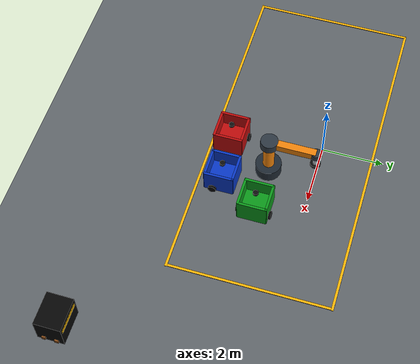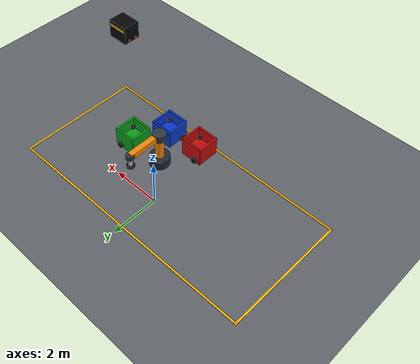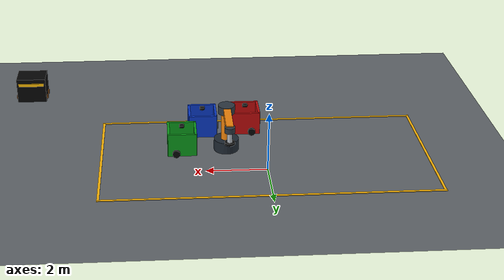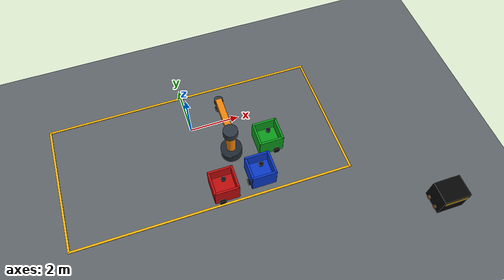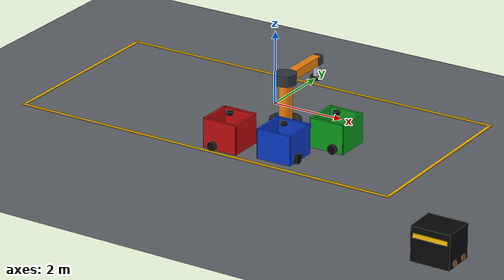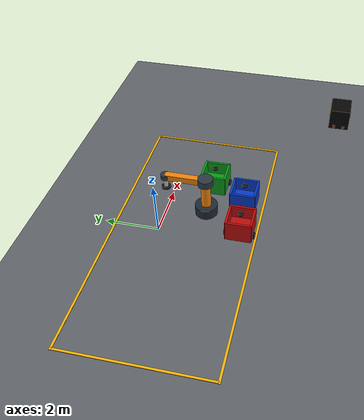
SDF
<sdf version="1.10">
 <world name="factory_test">
  <model name="ground_plane">
   <static>true</static>
   <link name="link">
    <collision name="collision">
     <geometry><plane><normal>0 0 1</normal><size>24 20</size></plane></geometry>
    </collision>
    <visual name="visual">
     <geometry><plane><normal>0 0 1</normal><size>24 20</size></plane></geometry>
     <material><ambient>0.28 0.3 0.32 1</ambient><diffuse>0.38 0.4 0.42 1</diffuse></material>
    </visual>
   </link>
  </model>
  <model name="sorting_arm">
   <pose>1.25 -1.5 0 0 0 0</pose>
   <link name="base_link">
    <inertial><mass>20</mass><inertia><ixx>1</ixx><iyy>1</iyy><izz>1</izz></inertia></inertial>
    <collision name="base_collision">
     <pose>0 0 0.2 0 0 0</pose>
     <geometry><cylinder><radius>0.42</radius><length>0.4</length></cylinder></geometry>
    </collision>
    <collision name="column_collision">
     <pose>0 0 0.9 0 0 0</pose>
     <geometry><cylinder><radius>0.18</radius><length>1.4</length></cylinder></geometry>
    </collision>
    <visual name="base">
     <pose>0 0 0.2 0 0 0</pose>
     <geometry><cylinder><radius>0.42</radius><length>0.4</length></cylinder></geometry>
     <material><diffuse>0.12 0.16 0.2 1</diffuse></material>
    </visual>
    <visual name="column">
     <pose>0 0 0.9 0 0 0</pose>
     <geometry><cylinder><radius>0.18</radius><length>1.4</length></cylinder></geometry>
     <material><diffuse>0.95 0.52 0.04 1</diffuse></material>
    </visual>
   </link>
   <joint name="yaw_joint" type="revolute">
    <pose relative_to="base_link">0 0 1.5 0 0 0</pose>
    <parent>base_link</parent>
    <child>boom_link</child>
    <axis>
     <xyz>0 0 1</xyz>
     <limit><lower>-3.0</lower><upper>3.0</upper><effort>250</effort><velocity>1.2</velocity></limit>
     <dynamics><damping>2.0</damping></dynamics>
    </axis>
   </joint>
   <link name="boom_link">
    <pose relative_to="yaw_joint">0 0 0 0 0 0</pose>
    <inertial>
     <pose>0 0.75 0 0 0 0</pose>
     <mass>5</mass>
     <inertia><ixx>1</ixx><iyy>0.2</iyy><izz>1</izz></inertia>
    </inertial>
    <collision name="boom_collision">
     <pose>0 0.75 0 0 0 0</pose>
     <geometry><box><size>0.24 1.5 0.24</size></box></geometry>
    </collision>
    <visual name="boom">
     <pose>0 0.75 0 0 0 0</pose>
     <geometry><box><size>0.24 1.5 0.24</size></box></geometry>
     <material><diffuse>0.95 0.52 0.04 1</diffuse></material>
    </visual>
    <visual name="shoulder">
     <geometry><cylinder><radius>0.28</radius><length>0.28</length></cylinder></geometry>
     <material><diffuse>0.18 0.22 0.26 1</diffuse></material>
    </visual>
   </link>
   <joint name="lift_joint" type="prismatic">
    <pose relative_to="boom_link">0 1.5 0 0 0 0</pose>
    <parent>boom_link</parent>
    <child>carriage_link</child>
    <axis>
     <xyz>0 0 1</xyz>
     <limit><lower>0</lower><upper>0.6</upper><effort>250</effort><velocity>0.8</velocity></limit>
     <dynamics><damping>3.0</damping></dynamics>
    </axis>
   </joint>
   <link name="carriage_link">
    <pose relative_to="lift_joint">0 0 0 0 0 0</pose>
    <inertial>
     <pose>0 0 -0.22 0 0 0</pose>
     <mass>2</mass>
     <inertia><ixx>0.08</ixx><iyy>0.08</iyy><izz>0.02</izz></inertia>
    </inertial>
    <collision name="tool_collision">
     <pose>0 0 -0.22 0 0 0</pose>
     <geometry><cylinder><radius>0.08</radius><length>0.45</length></cylinder></geometry>
    </collision>
    <visual name="wrist">
     <geometry><cylinder><radius>0.17</radius><length>0.18</length></cylinder></geometry>
     <material><diffuse>0.18 0.22 0.26 1</diffuse></material>
    </visual>
    <visual name="tool">
     <pose>0 0 -0.22 0 0 0</pose>
     <geometry><cylinder><radius>0.08</radius><length>0.45</length></cylinder></geometry>
     <material><diffuse>0.72 0.75 0.78 1</diffuse></material>
    </visual>
    <visual name="suction_cup">
     <pose>0 0 -0.48 0 0 0</pose>
     <geometry><cylinder><radius>0.17</radius><length>0.08</length></cylinder></geometry>
     <material><diffuse>0.04 0.04 0.04 1</diffuse></material>
    </visual>
   </link>
   <joint name="world_fixed" type="fixed"><parent>world</parent><child>base_link</child></joint>
   <plugin filename="gz-sim-joint-position-controller-system" name="gz::sim::systems::JointPositionController">
    <joint_name>yaw_joint</joint_name>
    <topic>/arm/yaw_cmd</topic>
    <p_gain>80</p_gain>
    <i_gain>0.5</i_gain>
    <d_gain>8</d_gain>
    <cmd_min>-250</cmd_min>
    <cmd_max>250</cmd_max>
   </plugin>
   <plugin filename="gz-sim-joint-position-controller-system" name="gz::sim::systems::JointPositionController">
    <joint_name>lift_joint</joint_name>
    <topic>/arm/lift_cmd</topic>
    <p_gain>1000</p_gain>
    <i_gain>10</i_gain>
    <d_gain>50</d_gain>
    <cmd_min>-250</cmd_min>
    <cmd_max>250</cmd_max>
   </plugin>
   <plugin filename="gz-sim-joint-state-publisher-system" name="gz::sim::systems::JointStatePublisher"/>
   <plugin filename="gz-sim-detachable-joint-system" name="gz::sim::systems::DetachableJoint">
    <parent_link>carriage_link</parent_link>
    <child_model>item_a_red_cube</child_model>
    <child_link>item</child_link>
    <detach_topic>/arm/a_red_cube/detach</detach_topic>
    <attach_topic>/arm/a_red_cube/attach</attach_topic>
    <output_topic>/arm/a_red_cube/attached</output_topic>
   </plugin>
   <plugin filename="gz-sim-detachable-joint-system" name="gz::sim::systems::DetachableJoint">
    <parent_link>carriage_link</parent_link>
    <child_model>item_b_green_cylinder</child_model>
    <child_link>item</child_link>
    <detach_topic>/arm/b_green_cylinder/detach</detach_topic>
    <attach_topic>/arm/b_green_cylinder/attach</attach_topic>
    <output_topic>/arm/b_green_cylinder/attached</output_topic>
   </plugin>
   <plugin filename="gz-sim-detachable-joint-system" name="gz::sim::systems::DetachableJoint">
    <parent_link>carriage_link</parent_link>
    <child_model>item_c_blue_hex</child_model>
    <child_link>item</child_link>
    <detach_topic>/arm/c_blue_hex/detach</detach_topic>
    <attach_topic>/arm/c_blue_hex/attach</attach_topic>
    <output_topic>/arm/c_blue_hex/attached</output_topic>
   </plugin>
  </model>
  <model name="pickup_sensor">
   <static>true</static>
   <pose>1.25 0 2.15 0 0 0</pose>
   <link name="pickup_sensor_link">
    <sensor name="pickup_logical_camera" type="logical_camera">
     <pose>0 0 0 0 1.5708 0</pose>
     <update_rate>30</update_rate>
     <logical_camera>
      <near>0.3</near>
      <far>1.6</far>
      <horizontal_fov>0.8</horizontal_fov>
      <aspect_ratio>1.5</aspect_ratio>
     </logical_camera>
     <always_on>true</always_on>
     <visualize>false</visualize>
     <topic>/pickup/logical_camera</topic>
    </sensor>
   </link>
  </model>
  <model name="bin_a_red">
   <pose>0.5 -2.95 0 0 0 3.14159</pose>
   <link name="bin">
    <inertial><mass>18</mass><inertia><ixx>1.5</ixx><iyy>1.5</iyy><izz>1.5</izz></inertia></inertial>
    <collision name="base_collision">
     <pose>0 0 0.23 0 0 0</pose>
     <geometry><box><size>0.95 0.95 0.16</size></box></geometry>
    </collision>
    <collision name="wall_1_collision">
     <pose>0 0.45 0.42 0 0 0</pose>
     <geometry><box><size>0.95 0.08 0.8</size></box></geometry>
    </collision>
    <collision name="wall_2_collision">
     <pose>0 -0.45 0.42 0 0 0</pose>
     <geometry><box><size>0.95 0.08 0.8</size></box></geometry>
    </collision>
    <collision name="wall_3_collision">
     <pose>0.45 0 0.42 0 0 0</pose>
     <geometry><box><size>0.08 0.95 0.8</size></box></geometry>
    </collision>
    <collision name="wall_4_collision">
     <pose>-0.45 0 0.42 0 0 0</pose>
     <geometry><box><size>0.08 0.95 0.8</size></box></geometry>
    </collision>
    <visual name="base">
     <pose>0 0 0.23 0 0 0</pose>
     <geometry><box><size>0.95 0.95 0.16</size></box></geometry>
     <material><diffuse>0.75 0.04 0.04 1</diffuse></material>
    </visual>
    <visual name="wall_1">
     <pose>0 0.45 0.42 0 0 0</pose>
     <geometry><box><size>0.95 0.08 0.8</size></box></geometry>
     <material><diffuse>0.75 0.04 0.04 1</diffuse></material>
    </visual>
    <visual name="wall_2">
     <pose>0 -0.45 0.42 0 0 0</pose>
     <geometry><box><size>0.95 0.08 0.8</size></box></geometry>
     <material><diffuse>0.75 0.04 0.04 1</diffuse></material>
    </visual>
    <visual name="wall_3">
     <pose>0.45 0 0.42 0 0 0</pose>
     <geometry><box><size>0.08 0.95 0.8</size></box></geometry>
     <material><diffuse>0.75 0.04 0.04 1</diffuse></material>
    </visual>
    <visual name="wall_4">
     <pose>-0.45 0 0.42 0 0 0</pose>
     <geometry><box><size>0.08 0.95 0.8</size></box></geometry>
     <material><diffuse>0.75 0.04 0.04 1</diffuse></material>
    </visual>
    <visual name="lidar_visual">
     <pose>0 0 0.9 0 0 0</pose>
     <geometry><cylinder><radius>0.09</radius><length>0.08</length></cylinder></geometry>
     <material><diffuse>0.05 0.05 0.05 1</diffuse></material>
    </visual>
    <sensor name="lidar" type="gpu_lidar">
     <pose>0 0 0.9 0 0 0</pose>
     <topic>/model/bin_a_red/scan</topic>
     <update_rate>10</update_rate>
     <lidar>
      <scan>
       <horizontal>
        <samples>360</samples>
        <resolution>1</resolution>
        <min_angle>-3.14159</min_angle>
        <max_angle>3.14159</max_angle>
       </horizontal>
      </scan>
      <range><min>0.15</min><max>12.0</max><resolution>0.03</resolution></range>
      <noise><type>gaussian</type><mean>0</mean><stddev>0.01</stddev></noise>
     </lidar>
     <always_on>true</always_on>
     <visualize>false</visualize>
    </sensor>
   </link>
   <link name="left_wheel">
    <pose>0.2 0.52 0.13 1.5708 0 0</pose>
    <inertial><mass>1</mass><inertia><ixx>0.02</ixx><iyy>0.02</iyy><izz>0.02</izz></inertia></inertial>
    <collision name="collision">
     <geometry><cylinder><radius>0.13</radius><length>0.1</length></cylinder></geometry>
    </collision>
    <visual name="visual">
     <geometry><cylinder><radius>0.13</radius><length>0.1</length></cylinder></geometry>
     <material><diffuse>0.02 0.02 0.02 1</diffuse></material>
    </visual>
   </link>
   <link name="right_wheel">
    <pose>0.2 -0.52 0.13 1.5708 0 0</pose>
    <inertial><mass>1</mass><inertia><ixx>0.02</ixx><iyy>0.02</iyy><izz>0.02</izz></inertia></inertial>
    <collision name="collision">
     <geometry><cylinder><radius>0.13</radius><length>0.1</length></cylinder></geometry>
    </collision>
    <visual name="visual">
     <geometry><cylinder><radius>0.13</radius><length>0.1</length></cylinder></geometry>
     <material><diffuse>0.02 0.02 0.02 1</diffuse></material>
    </visual>
   </link>
   <link name="caster">
    <pose>-0.35 0 0.09 0 0 0</pose>
    <inertial><mass>0.5</mass><inertia><ixx>0.01</ixx><iyy>0.01</iyy><izz>0.01</izz></inertia></inertial>
    <collision name="collision"><geometry><sphere><radius>0.09</radius></sphere></geometry></collision>
    <visual name="visual">
     <geometry><sphere><radius>0.09</radius></sphere></geometry>
     <material><diffuse>0.05 0.05 0.05 1</diffuse></material>
    </visual>
   </link>
   <joint name="left_wheel_joint" type="revolute">
    <parent>bin</parent>
    <child>left_wheel</child>
    <axis><xyz expressed_in="__model__">0 1 0</xyz></axis>
   </joint>
   <joint name="right_wheel_joint" type="revolute">
    <parent>bin</parent>
    <child>right_wheel</child>
    <axis><xyz expressed_in="__model__">0 1 0</xyz></axis>
   </joint>
   <joint name="caster_joint" type="ball"><parent>bin</parent><child>caster</child></joint>
   <plugin filename="gz-sim-diff-drive-system" name="gz::sim::systems::DiffDrive">
    <left_joint>left_wheel_joint</left_joint>
    <right_joint>right_wheel_joint</right_joint>
    <wheel_separation>1.04</wheel_separation>
    <wheel_radius>0.13</wheel_radius>
    <odom_publish_frequency>30</odom_publish_frequency>
    <max_linear_acceleration>0.3</max_linear_acceleration>
    <min_linear_acceleration>-0.3</min_linear_acceleration>
    <max_linear_velocity>0.4</max_linear_velocity>
    <min_linear_velocity>-0.4</min_linear_velocity>
   </plugin>
   <plugin filename="gz-sim-odometry-publisher-system" name="gz::sim::systems::OdometryPublisher">
    <odom_topic>/model/bin_a_red/ground_truth_odometry</odom_topic>
    <odom_publish_frequency>30</odom_publish_frequency>
    <odom_frame>map</odom_frame>
    <robot_base_frame>base_link</robot_base_frame>
    <dimensions>2</dimensions>
   </plugin>
   <plugin filename="gz-sim-detachable-joint-system" name="gz::sim::systems::DetachableJoint">
    <parent_link>bin</parent_link>
    <child_model>item_a_red_cube</child_model>
    <child_link>item</child_link>
    <detach_topic>/bin/a_red_cube/detach</detach_topic>
    <attach_topic>/bin/a_red_cube/attach</attach_topic>
    <output_topic>/bin/a_red_cube/attached</output_topic>
   </plugin>
  </model>
  <model name="bin_b_green">
   <pose>2.75 -1.5 0 0 0 0</pose>
   <link name="bin">
    <inertial><mass>18</mass><inertia><ixx>1.5</ixx><iyy>1.5</iyy><izz>1.5</izz></inertia></inertial>
    <collision name="base_collision">
     <pose>0 0 0.23 0 0 0</pose>
     <geometry><box><size>0.95 0.95 0.16</size></box></geometry>
    </collision>
    <collision name="wall_1_collision">
     <pose>0 0.45 0.42 0 0 0</pose>
     <geometry><box><size>0.95 0.08 0.8</size></box></geometry>
    </collision>
    <collision name="wall_2_collision">
     <pose>0 -0.45 0.42 0 0 0</pose>
     <geometry><box><size>0.95 0.08 0.8</size></box></geometry>
    </collision>
    <collision name="wall_3_collision">
     <pose>0.45 0 0.42 0 0 0</pose>
     <geometry><box><size>0.08 0.95 0.8</size></box></geometry>
    </collision>
    <collision name="wall_4_collision">
     <pose>-0.45 0 0.42 0 0 0</pose>
     <geometry><box><size>0.08 0.95 0.8</size></box></geometry>
    </collision>
    <visual name="base">
     <pose>0 0 0.23 0 0 0</pose>
     <geometry><box><size>0.95 0.95 0.16</size></box></geometry>
     <material><diffuse>0.04 0.6 0.1 1</diffuse></material>
    </visual>
    <visual name="wall_1">
     <pose>0 0.45 0.42 0 0 0</pose>
     <geometry><box><size>0.95 0.08 0.8</size></box></geometry>
     <material><diffuse>0.04 0.6 0.1 1</diffuse></material>
    </visual>
    <visual name="wall_2">
     <pose>0 -0.45 0.42 0 0 0</pose>
     <geometry><box><size>0.95 0.08 0.8</size></box></geometry>
     <material><diffuse>0.04 0.6 0.1 1</diffuse></material>
    </visual>
    <visual name="wall_3">
     <pose>0.45 0 0.42 0 0 0</pose>
     <geometry><box><size>0.08 0.95 0.8</size></box></geometry>
     <material><diffuse>0.04 0.6 0.1 1</diffuse></material>
    </visual>
    <visual name="wall_4">
     <pose>-0.45 0 0.42 0 0 0</pose>
     <geometry><box><size>0.08 0.95 0.8</size></box></geometry>
     <material><diffuse>0.04 0.6 0.1 1</diffuse></material>
    </visual>
    <visual name="lidar_visual">
     <pose>0 0 0.9 0 0 0</pose>
     <geometry><cylinder><radius>0.09</radius><length>0.08</length></cylinder></geometry>
     <material><diffuse>0.05 0.05 0.05 1</diffuse></material>
    </visual>
    <sensor name="lidar" type="gpu_lidar">
     <pose>0 0 0.9 0 0 0</pose>
     <topic>/model/bin_b_green/scan</topic>
     <update_rate>10</update_rate>
     <lidar>
      <scan>
       <horizontal>
        <samples>360</samples>
        <resolution>1</resolution>
        <min_angle>-3.14159</min_angle>
        <max_angle>3.14159</max_angle>
       </horizontal>
      </scan>
      <range><min>0.15</min><max>12.0</max><resolution>0.03</resolution></range>
      <noise><type>gaussian</type><mean>0</mean><stddev>0.01</stddev></noise>
     </lidar>
     <always_on>true</always_on>
     <visualize>false</visualize>
    </sensor>
   </link>
   <link name="left_wheel">
    <pose>0.2 0.52 0.13 1.5708 0 0</pose>
    <inertial><mass>1</mass><inertia><ixx>0.02</ixx><iyy>0.02</iyy><izz>0.02</izz></inertia></inertial>
    <collision name="collision">
     <geometry><cylinder><radius>0.13</radius><length>0.1</length></cylinder></geometry>
    </collision>
    <visual name="visual">
     <geometry><cylinder><radius>0.13</radius><length>0.1</length></cylinder></geometry>
     <material><diffuse>0.02 0.02 0.02 1</diffuse></material>
    </visual>
   </link>
   <link name="right_wheel">
    <pose>0.2 -0.52 0.13 1.5708 0 0</pose>
    <inertial><mass>1</mass><inertia><ixx>0.02</ixx><iyy>0.02</iyy><izz>0.02</izz></inertia></inertial>
    <collision name="collision">
     <geometry><cylinder><radius>0.13</radius><length>0.1</length></cylinder></geometry>
    </collision>
    <visual name="visual">
     <geometry><cylinder><radius>0.13</radius><length>0.1</length></cylinder></geometry>
     <material><diffuse>0.02 0.02 0.02 1</diffuse></material>
    </visual>
   </link>
   <link name="caster">
    <pose>-0.35 0 0.09 0 0 0</pose>
    <inertial><mass>0.5</mass><inertia><ixx>0.01</ixx><iyy>0.01</iyy><izz>0.01</izz></inertia></inertial>
    <collision name="collision"><geometry><sphere><radius>0.09</radius></sphere></geometry></collision>
    <visual name="visual">
     <geometry><sphere><radius>0.09</radius></sphere></geometry>
     <material><diffuse>0.05 0.05 0.05 1</diffuse></material>
    </visual>
   </link>
   <joint name="left_wheel_joint" type="revolute">
    <parent>bin</parent>
    <child>left_wheel</child>
    <axis><xyz expressed_in="__model__">0 1 0</xyz></axis>
   </joint>
   <joint name="right_wheel_joint" type="revolute">
    <parent>bin</parent>
    <child>right_wheel</child>
    <axis><xyz expressed_in="__model__">0 1 0</xyz></axis>
   </joint>
   <joint name="caster_joint" type="ball"><parent>bin</parent><child>caster</child></joint>
   <plugin filename="gz-sim-diff-drive-system" name="gz::sim::systems::DiffDrive">
    <left_joint>left_wheel_joint</left_joint>
    <right_joint>right_wheel_joint</right_joint>
    <wheel_separation>1.04</wheel_separation>
    <wheel_radius>0.13</wheel_radius>
    <odom_publish_frequency>30</odom_publish_frequency>
    <max_linear_acceleration>0.3</max_linear_acceleration>
    <min_linear_acceleration>-0.3</min_linear_acceleration>
    <max_linear_velocity>0.4</max_linear_velocity>
    <min_linear_velocity>-0.4</min_linear_velocity>
   </plugin>
   <plugin filename="gz-sim-odometry-publisher-system" name="gz::sim::systems::OdometryPublisher">
    <odom_topic>/model/bin_b_green/ground_truth_odometry</odom_topic>
    <odom_publish_frequency>30</odom_publish_frequency>
    <odom_frame>map</odom_frame>
    <robot_base_frame>base_link</robot_base_frame>
    <dimensions>2</dimensions>
   </plugin>
   <plugin filename="gz-sim-detachable-joint-system" name="gz::sim::systems::DetachableJoint">
    <parent_link>bin</parent_link>
    <child_model>item_b_green_cylinder</child_model>
    <child_link>item</child_link>
    <detach_topic>/bin/b_green_cylinder/detach</detach_topic>
    <attach_topic>/bin/b_green_cylinder/attach</attach_topic>
    <output_topic>/bin/b_green_cylinder/attached</output_topic>
   </plugin>
  </model>
  <model name="bin_c_blue">
   <pose>2.0 -2.8 0 0 0 -1.5708</pose>
   <link name="bin">
    <inertial><mass>18</mass><inertia><ixx>1.5</ixx><iyy>1.5</iyy><izz>1.5</izz></inertia></inertial>
    <collision name="base_collision">
     <pose>0 0 0.23 0 0 0</pose>
     <geometry><box><size>0.95 0.95 0.16</size></box></geometry>
    </collision>
    <collision name="wall_1_collision">
     <pose>0 0.45 0.42 0 0 0</pose>
     <geometry><box><size>0.95 0.08 0.8</size></box></geometry>
    </collision>
    <collision name="wall_2_collision">
     <pose>0 -0.45 0.42 0 0 0</pose>
     <geometry><box><size>0.95 0.08 0.8</size></box></geometry>
    </collision>
    <collision name="wall_3_collision">
     <pose>0.45 0 0.42 0 0 0</pose>
     <geometry><box><size>0.08 0.95 0.8</size></box></geometry>
    </collision>
    <collision name="wall_4_collision">
     <pose>-0.45 0 0.42 0 0 0</pose>
     <geometry><box><size>0.08 0.95 0.8</size></box></geometry>
    </collision>
    <visual name="base">
     <pose>0 0 0.23 0 0 0</pose>
     <geometry><box><size>0.95 0.95 0.16</size></box></geometry>
     <material><diffuse>0.03 0.22 0.78 1</diffuse></material>
    </visual>
    <visual name="wall_1">
     <pose>0 0.45 0.42 0 0 0</pose>
     <geometry><box><size>0.95 0.08 0.8</size></box></geometry>
     <material><diffuse>0.03 0.22 0.78 1</diffuse></material>
    </visual>
    <visual name="wall_2">
     <pose>0 -0.45 0.42 0 0 0</pose>
     <geometry><box><size>0.95 0.08 0.8</size></box></geometry>
     <material><diffuse>0.03 0.22 0.78 1</diffuse></material>
    </visual>
    <visual name="wall_3">
     <pose>0.45 0 0.42 0 0 0</pose>
     <geometry><box><size>0.08 0.95 0.8</size></box></geometry>
     <material><diffuse>0.03 0.22 0.78 1</diffuse></material>
    </visual>
    <visual name="wall_4">
     <pose>-0.45 0 0.42 0 0 0</pose>
     <geometry><box><size>0.08 0.95 0.8</size></box></geometry>
     <material><diffuse>0.03 0.22 0.78 1</diffuse></material>
    </visual>
    <visual name="lidar_visual">
     <pose>0 0 0.9 0 0 0</pose>
     <geometry><cylinder><radius>0.09</radius><length>0.08</length></cylinder></geometry>
     <material><diffuse>0.05 0.05 0.05 1</diffuse></material>
    </visual>
    <sensor name="lidar" type="gpu_lidar">
     <pose>0 0 0.9 0 0 0</pose>
     <topic>/model/bin_c_blue/scan</topic>
     <update_rate>10</update_rate>
     <lidar>
      <scan>
       <horizontal>
        <samples>360</samples>
        <resolution>1</resolution>
        <min_angle>-3.14159</min_angle>
        <max_angle>3.14159</max_angle>
       </horizontal>
      </scan>
      <range><min>0.15</min><max>12.0</max><resolution>0.03</resolution></range>
      <noise><type>gaussian</type><mean>0</mean><stddev>0.01</stddev></noise>
     </lidar>
     <always_on>true</always_on>
     <visualize>false</visualize>
    </sensor>
   </link>
   <link name="left_wheel">
    <pose>0.2 0.52 0.13 1.5708 0 0</pose>
    <inertial><mass>1</mass><inertia><ixx>0.02</ixx><iyy>0.02</iyy><izz>0.02</izz></inertia></inertial>
    <collision name="collision">
     <geometry><cylinder><radius>0.13</radius><length>0.1</length></cylinder></geometry>
    </collision>
    <visual name="visual">
     <geometry><cylinder><radius>0.13</radius><length>0.1</length></cylinder></geometry>
     <material><diffuse>0.02 0.02 0.02 1</diffuse></material>
    </visual>
   </link>
   <link name="right_wheel">
    <pose>0.2 -0.52 0.13 1.5708 0 0</pose>
    <inertial><mass>1</mass><inertia><ixx>0.02</ixx><iyy>0.02</iyy><izz>0.02</izz></inertia></inertial>
    <collision name="collision">
     <geometry><cylinder><radius>0.13</radius><length>0.1</length></cylinder></geometry>
    </collision>
    <visual name="visual">
     <geometry><cylinder><radius>0.13</radius><length>0.1</length></cylinder></geometry>
     <material><diffuse>0.02 0.02 0.02 1</diffuse></material>
    </visual>
   </link>
   <link name="caster">
    <pose>-0.35 0 0.09 0 0 0</pose>
    <inertial><mass>0.5</mass><inertia><ixx>0.01</ixx><iyy>0.01</iyy><izz>0.01</izz></inertia></inertial>
    <collision name="collision"><geometry><sphere><radius>0.09</radius></sphere></geometry></collision>
    <visual name="visual">
     <geometry><sphere><radius>0.09</radius></sphere></geometry>
     <material><diffuse>0.05 0.05 0.05 1</diffuse></material>
    </visual>
   </link>
   <joint name="left_wheel_joint" type="revolute">
    <parent>bin</parent>
    <child>left_wheel</child>
    <axis><xyz expressed_in="__model__">0 1 0</xyz></axis>
   </joint>
   <joint name="right_wheel_joint" type="revolute">
    <parent>bin</parent>
    <child>right_wheel</child>
    <axis><xyz expressed_in="__model__">0 1 0</xyz></axis>
   </joint>
   <joint name="caster_joint" type="ball"><parent>bin</parent><child>caster</child></joint>
   <plugin filename="gz-sim-diff-drive-system" name="gz::sim::systems::DiffDrive">
    <left_joint>left_wheel_joint</left_joint>
    <right_joint>right_wheel_joint</right_joint>
    <wheel_separation>1.04</wheel_separation>
    <wheel_radius>0.13</wheel_radius>
    <odom_publish_frequency>30</odom_publish_frequency>
    <max_linear_acceleration>0.3</max_linear_acceleration>
    <min_linear_acceleration>-0.3</min_linear_acceleration>
    <max_linear_velocity>0.4</max_linear_velocity>
    <min_linear_velocity>-0.4</min_linear_velocity>
   </plugin>
   <plugin filename="gz-sim-odometry-publisher-system" name="gz::sim::systems::OdometryPublisher">
    <odom_topic>/model/bin_c_blue/ground_truth_odometry</odom_topic>
    <odom_publish_frequency>30</odom_publish_frequency>
    <odom_frame>map</odom_frame>
    <robot_base_frame>base_link</robot_base_frame>
    <dimensions>2</dimensions>
   </plugin>
   <plugin filename="gz-sim-detachable-joint-system" name="gz::sim::systems::DetachableJoint">
    <parent_link>bin</parent_link>
    <child_model>item_c_blue_hex</child_model>
    <child_link>item</child_link>
    <detach_topic>/bin/c_blue_hex/detach</detach_topic>
    <attach_topic>/bin/c_blue_hex/attach</attach_topic>
    <output_topic>/bin/c_blue_hex/attached</output_topic>
   </plugin>
  </model>
  <model name="moving_pallet_obstacle">
   <static>true</static>
   <pose>8.2 -5.95 0 0 0 0</pose>
   <link name="pallet">
    <collision name="body_collision">
     <pose>0 0 0.45 0 0 0</pose>
     <geometry><box><size>1.05 0.85 0.9</size></box></geometry>
    </collision>
    <visual name="body">
     <pose>0 0 0.45 0 0 0</pose>
     <geometry><box><size>1.05 0.85 0.9</size></box></geometry>
     <material><ambient>0.02 0.02 0.02 1</ambient><diffuse>0.02 0.02 0.02 1</diffuse></material>
    </visual>
    <visual name="warning_stripe_front">
     <pose>0 -0.431 0.68 0 0 0</pose>
     <geometry><box><size>0.92 0.02 0.12</size></box></geometry>
     <material><diffuse>1 0.75 0.02 1</diffuse></material>
    </visual>
    <visual name="warning_stripe_rear">
     <pose>0 0.431 0.68 0 0 0</pose>
     <geometry><box><size>0.92 0.02 0.12</size></box></geometry>
     <material><diffuse>1 0.75 0.02 1</diffuse></material>
    </visual>
    <visual name="fork_pocket_left">
     <pose>0 -0.2 0.12 0 0 0</pose>
     <geometry><box><size>1.15 0.12 0.12</size></box></geometry>
     <material><diffuse>0.58 0.33 0.11 1</diffuse></material>
    </visual>
    <visual name="fork_pocket_right">
     <pose>0 0.2 0.12 0 0 0</pose>
     <geometry><box><size>1.15 0.12 0.12</size></box></geometry>
     <material><diffuse>0.58 0.33 0.11 1</diffuse></material>
    </visual>
   </link>
  </model>
  <model name="safety_zone">
   <static>true</static>
   <link name="markings">
    <visual name="line_front">
     <pose>0 -3.55 0.012 0 0 0</pose>
     <geometry><box><size>11 0.08 0.02</size></box></geometry>
     <material><diffuse>1 0.72 0.02 1</diffuse></material>
    </visual>
    <visual name="line_back">
     <pose>0 1.65 0.012 0 0 0</pose>
     <geometry><box><size>11 0.08 0.02</size></box></geometry>
     <material><diffuse>1 0.72 0.02 1</diffuse></material>
    </visual>
    <visual name="line_left">
     <pose>-5.45 -0.95 0.012 0 0 0</pose>
     <geometry><box><size>0.08 5.2 0.02</size></box></geometry>
     <material><diffuse>1 0.72 0.02 1</diffuse></material>
    </visual>
    <visual name="line_right">
     <pose>5.45 -0.95 0.012 0 0 0</pose>
     <geometry><box><size>0.08 5.2 0.02</size></box></geometry>
     <material><diffuse>1 0.72 0.02 1</diffuse></material>
    </visual>
   </link>
  </model>
 </world>
</sdf>
